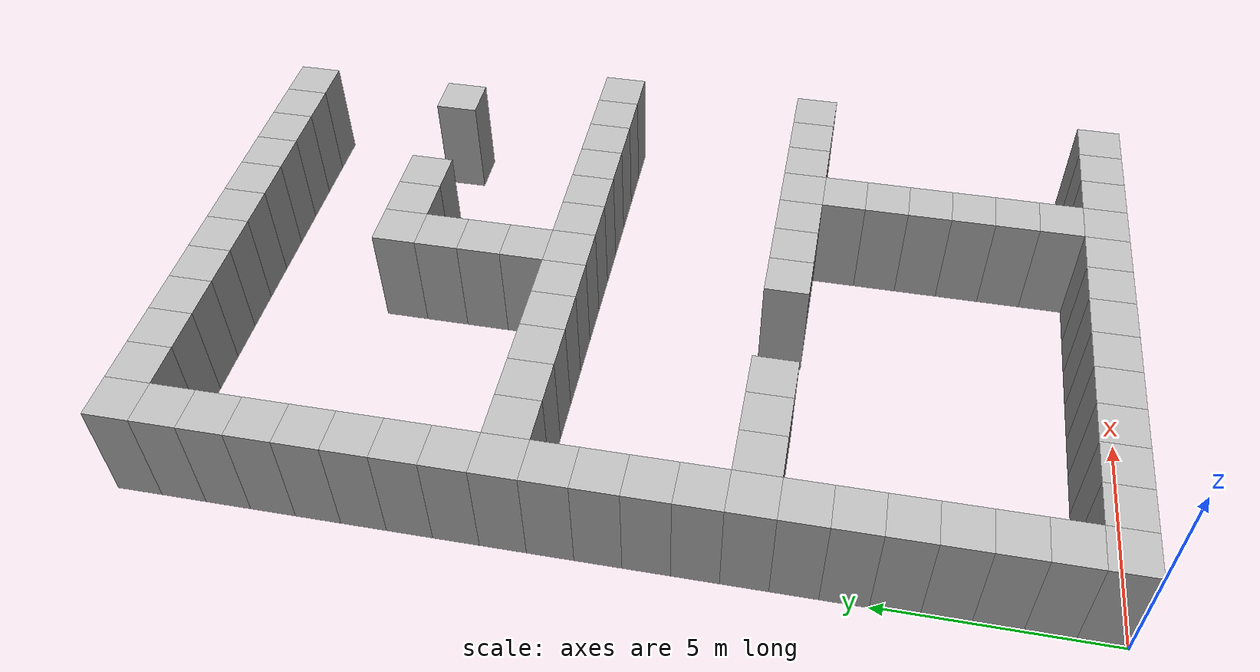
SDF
<sdf version="1.4">
 <world name="default">
  <model name="box_0_0">
   <pose>0.5 0.5 1.25 0 0 0</pose>
   <static>true</static>
   <link name="link">
    <collision name="collision"><geometry><box><size>1.0 1.0 2.5</size></box></geometry></collision>
    <visual name="body_visual">
     <material>
      <script><uri>file://media/materials/scripts/repeated.material</uri><name>Repeated/seamless</name></script>
     </material>
     <geometry><box><size>1.0 1.0 2.5</size></box></geometry>
    </visual>
   </link>
  </model>
  <model name="box_0_1">
   <pose>0.5 1.5 1.25 0 0 0</pose>
   <static>true</static>
   <link name="link">
    <collision name="collision"><geometry><box><size>1.0 1.0 2.5</size></box></geometry></collision>
    <visual name="body_visual">
     <material>
      <script><uri>file://media/materials/scripts/repeated.material</uri><name>Repeated/seamless</name></script>
     </material>
     <geometry><box><size>1.0 1.0 2.5</size></box></geometry>
    </visual>
   </link>
  </model>
  <model name="box_0_2">
   <pose>0.5 2.5 1.25 0 0 0</pose>
   <static>true</static>
   <link name="link">
    <collision name="collision"><geometry><box><size>1.0 1.0 2.5</size></box></geometry></collision>
    <visual name="body_visual">
     <material>
      <script><uri>file://media/materials/scripts/repeated.material</uri><name>Repeated/seamless</name></script>
     </material>
     <geometry><box><size>1.0 1.0 2.5</size></box></geometry>
    </visual>
   </link>
  </model>
  <model name="box_0_3">
   <pose>0.5 3.5 1.25 0 0 0</pose>
   <static>true</static>
   <link name="link">
    <collision name="collision"><geometry><box><size>1.0 1.0 2.5</size></box></geometry></collision>
    <visual name="body_visual">
     <material>
      <script><uri>file://media/materials/scripts/repeated.material</uri><name>Repeated/seamless</name></script>
     </material>
     <geometry><box><size>1.0 1.0 2.5</size></box></geometry>
    </visual>
   </link>
  </model>
  <model name="box_0_4">
   <pose>0.5 4.5 1.25 0 0 0</pose>
   <static>true</static>
   <link name="link">
    <collision name="collision"><geometry><box><size>1.0 1.0 2.5</size></box></geometry></collision>
    <visual name="body_visual">
     <material>
      <script><uri>file://media/materials/scripts/repeated.material</uri><name>Repeated/seamless</name></script>
     </material>
     <geometry><box><size>1.0 1.0 2.5</size></box></geometry>
    </visual>
   </link>
  </model>
  <model name="box_0_5">
   <pose>0.5 5.5 1.25 0 0 0</pose>
   <static>true</static>
   <link name="link">
    <collision name="collision"><geometry><box><size>1.0 1.0 2.5</size></box></geometry></collision>
    <visual name="body_visual">
     <material>
      <script><uri>file://media/materials/scripts/repeated.material</uri><name>Repeated/seamless</name></script>
     </material>
     <geometry><box><size>1.0 1.0 2.5</size></box></geometry>
    </visual>
   </link>
  </model>
  <model name="box_0_6">
   <pose>0.5 6.5 1.25 0 0 0</pose>
   <static>true</static>
   <link name="link">
    <collision name="collision"><geometry><box><size>1.0 1.0 2.5</size></box></geometry></collision>
    <visual name="body_visual">
     <material>
      <script><uri>file://media/materials/scripts/repeated.material</uri><name>Repeated/seamless</name></script>
     </material>
     <geometry><box><size>1.0 1.0 2.5</size></box></geometry>
    </visual>
   </link>
  </model>
  <model name="box_0_7">
   <pose>0.5 7.5 1.25 0 0 0</pose>
   <static>true</static>
   <link name="link">
    <collision name="collision"><geometry><box><size>1.0 1.0 2.5</size></box></geometry></collision>
    <visual name="body_visual">
     <material>
      <script><uri>file://media/materials/scripts/repeated.material</uri><name>Repeated/seamless</name></script>
     </material>
     <geometry><box><size>1.0 1.0 2.5</size></box></geometry>
    </visual>
   </link>
  </model>
  <model name="box_0_8">
   <pose>0.5 8.5 1.25 0 0 0</pose>
   <static>true</static>
   <link name="link">
    <collision name="collision"><geometry><box><size>1.0 1.0 2.5</size></box></geometry></collision>
    <visual name="body_visual">
     <material>
      <script><uri>file://media/materials/scripts/repeated.material</uri><name>Repeated/seamless</name></script>
     </material>
     <geometry><box><size>1.0 1.0 2.5</size></box></geometry>
    </visual>
   </link>
  </model>
  <model name="box_0_9">
   <pose>0.5 9.5 1.25 0 0 0</pose>
   <static>true</static>
   <link name="link">
    <collision name="collision"><geometry><box><size>1.0 1.0 2.5</size></box></geometry></collision>
    <visual name="body_visual">
     <material>
      <script><uri>file://media/materials/scripts/repeated.material</uri><name>Repeated/seamless</name></script>
     </material>
     <geometry><box><size>1.0 1.0 2.5</size></box></geometry>
    </visual>
   </link>
  </model>
  <model name="box_0_10">
   <pose>0.5 10.5 1.25 0 0 0</pose>
   <static>true</static>
   <link name="link">
    <collision name="collision"><geometry><box><size>1.0 1.0 2.5</size></box></geometry></collision>
    <visual name="body_visual">
     <material>
      <script><uri>file://media/materials/scripts/repeated.material</uri><name>Repeated/seamless</name></script>
     </material>
     <geometry><box><size>1.0 1.0 2.5</size></box></geometry>
    </visual>
   </link>
  </model>
  <model name="box_0_11">
   <pose>0.5 11.5 1.25 0 0 0</pose>
   <static>true</static>
   <link name="link">
    <collision name="collision"><geometry><box><size>1.0 1.0 2.5</size></box></geometry></collision>
    <visual name="body_visual">
     <material>
      <script><uri>file://media/materials/scripts/repeated.material</uri><name>Repeated/seamless</name></script>
     </material>
     <geometry><box><size>1.0 1.0 2.5</size></box></geometry>
    </visual>
   </link>
  </model>
  <model name="box_0_12">
   <pose>0.5 12.5 1.25 0 0 0</pose>
   <static>true</static>
   <link name="link">
    <collision name="collision"><geometry><box><size>1.0 1.0 2.5</size></box></geometry></collision>
    <visual name="body_visual">
     <material>
      <script><uri>file://media/materials/scripts/repeated.material</uri><name>Repeated/seamless</name></script>
     </material>
     <geometry><box><size>1.0 1.0 2.5</size></box></geometry>
    </visual>
   </link>
  </model>
  <model name="box_0_13">
   <pose>0.5 13.5 1.25 0 0 0</pose>
   <static>true</static>
   <link name="link">
    <collision name="collision"><geometry><box><size>1.0 1.0 2.5</size></box></geometry></collision>
    <visual name="body_visual">
     <material>
      <script><uri>file://media/materials/scripts/repeated.material</uri><name>Repeated/seamless</name></script>
     </material>
     <geometry><box><size>1.0 1.0 2.5</size></box></geometry>
    </visual>
   </link>
  </model>
  <model name="box_0_14">
   <pose>0.5 14.5 1.25 0 0 0</pose>
   <static>true</static>
   <link name="link">
    <collision name="collision"><geometry><box><size>1.0 1.0 2.5</size></box></geometry></collision>
    <visual name="body_visual">
     <material>
      <script><uri>file://media/materials/scripts/repeated.material</uri><name>Repeated/seamless</name></script>
     </material>
     <geometry><box><size>1.0 1.0 2.5</size></box></geometry>
    </visual>
   </link>
  </model>
  <model name="box_0_15">
   <pose>0.5 15.5 1.25 0 0 0</pose>
   <static>true</static>
   <link name="link">
    <collision name="collision"><geometry><box><size>1.0 1.0 2.5</size></box></geometry></collision>
    <visual name="body_visual">
     <material>
      <script><uri>file://media/materials/scripts/repeated.material</uri><name>Repeated/seamless</name></script>
     </material>
     <geometry><box><size>1.0 1.0 2.5</size></box></geometry>
    </visual>
   </link>
  </model>
  <model name="box_0_16">
   <pose>0.5 16.5 1.25 0 0 0</pose>
   <static>true</static>
   <link name="link">
    <collision name="collision"><geometry><box><size>1.0 1.0 2.5</size></box></geometry></collision>
    <visual name="body_visual">
     <material>
      <script><uri>file://media/materials/scripts/repeated.material</uri><name>Repeated/seamless</name></script>
     </material>
     <geometry><box><size>1.0 1.0 2.5</size></box></geometry>
    </visual>
   </link>
  </model>
  <model name="box_0_17">
   <pose>0.5 17.5 1.25 0 0 0</pose>
   <static>true</static>
   <link name="link">
    <collision name="collision"><geometry><box><size>1.0 1.0 2.5</size></box></geometry></collision>
    <visual name="body_visual">
     <material>
      <script><uri>file://media/materials/scripts/repeated.material</uri><name>Repeated/seamless</name></script>
     </material>
     <geometry><box><size>1.0 1.0 2.5</size></box></geometry>
    </visual>
   </link>
  </model>
  <model name="box_0_18">
   <pose>0.5 18.5 1.25 0 0 0</pose>
   <static>true</static>
   <link name="link">
    <collision name="collision"><geometry><box><size>1.0 1.0 2.5</size></box></geometry></collision>
    <visual name="body_visual">
     <material>
      <script><uri>file://media/materials/scripts/repeated.material</uri><name>Repeated/seamless</name></script>
     </material>
     <geometry><box><size>1.0 1.0 2.5</size></box></geometry>
    </visual>
   </link>
  </model>
  <model name="box_0_19">
   <pose>0.5 19.5 1.25 0 0 0</pose>
   <static>true</static>
   <link name="link">
    <collision name="collision"><geometry><box><size>1.0 1.0 2.5</size></box></geometry></collision>
    <visual name="body_visual">
     <material>
      <script><uri>file://media/materials/scripts/repeated.material</uri><name>Repeated/seamless</name></script>
     </material>
     <geometry><box><size>1.0 1.0 2.5</size></box></geometry>
    </visual>
   </link>
  </model>
  <model name="box_0_20">
   <pose>0.5 20.5 1.25 0 0 0</pose>
   <static>true</static>
   <link name="link">
    <collision name="collision"><geometry><box><size>1.0 1.0 2.5</size></box></geometry></collision>
    <visual name="body_visual">
     <material>
      <script><uri>file://media/materials/scripts/repeated.material</uri><name>Repeated/seamless</name></script>
     </material>
     <geometry><box><size>1.0 1.0 2.5</size></box></geometry>
    </visual>
   </link>
  </model>
  <model name="box_1_0">
   <pose>1.5 0.5 1.25 0 0 0</pose>
   <static>true</static>
   <link name="link">
    <collision name="collision"><geometry><box><size>1.0 1.0 2.5</size></box></geometry></collision>
    <visual name="body_visual">
     <material>
      <script><uri>file://media/materials/scripts/repeated.material</uri><name>Repeated/seamless</name></script>
     </material>
     <geometry><box><size>1.0 1.0 2.5</size></box></geometry>
    </visual>
   </link>
  </model>
  <model name="box_1_7">
   <pose>1.5 7.5 1.25 0 0 0</pose>
   <static>true</static>
   <link name="link">
    <collision name="collision"><geometry><box><size>1.0 1.0 2.5</size></box></geometry></collision>
    <visual name="body_visual">
     <material>
      <script><uri>file://media/materials/scripts/repeated.material</uri><name>Repeated/seamless</name></script>
     </material>
     <geometry><box><size>1.0 1.0 2.5</size></box></geometry>
    </visual>
   </link>
  </model>
  <model name="box_1_12">
   <pose>1.5 12.5 1.25 0 0 0</pose>
   <static>true</static>
   <link name="link">
    <collision name="collision"><geometry><box><size>1.0 1.0 2.5</size></box></geometry></collision>
    <visual name="body_visual">
     <material>
      <script><uri>file://media/materials/scripts/repeated.material</uri><name>Repeated/seamless</name></script>
     </material>
     <geometry><box><size>1.0 1.0 2.5</size></box></geometry>
    </visual>
   </link>
  </model>
  <model name="box_1_20">
   <pose>1.5 20.5 1.25 0 0 0</pose>
   <static>true</static>
   <link name="link">
    <collision name="collision"><geometry><box><size>1.0 1.0 2.5</size></box></geometry></collision>
    <visual name="body_visual">
     <material>
      <script><uri>file://media/materials/scripts/repeated.material</uri><name>Repeated/seamless</name></script>
     </material>
     <geometry><box><size>1.0 1.0 2.5</size></box></geometry>
    </visual>
   </link>
  </model>
  <model name="box_2_0">
   <pose>2.5 0.5 1.25 0 0 0</pose>
   <static>true</static>
   <link name="link">
    <collision name="collision"><geometry><box><size>1.0 1.0 2.5</size></box></geometry></collision>
    <visual name="body_visual">
     <material>
      <script><uri>file://media/materials/scripts/repeated.material</uri><name>Repeated/seamless</name></script>
     </material>
     <geometry><box><size>1.0 1.0 2.5</size></box></geometry>
    </visual>
   </link>
  </model>
  <model name="box_2_7">
   <pose>2.5 7.5 1.25 0 0 0</pose>
   <static>true</static>
   <link name="link">
    <collision name="collision"><geometry><box><size>1.0 1.0 2.5</size></box></geometry></collision>
    <visual name="body_visual">
     <material>
      <script><uri>file://media/materials/scripts/repeated.material</uri><name>Repeated/seamless</name></script>
     </material>
     <geometry><box><size>1.0 1.0 2.5</size></box></geometry>
    </visual>
   </link>
  </model>
  <model name="box_2_12">
   <pose>2.5 12.5 1.25 0 0 0</pose>
   <static>true</static>
   <link name="link">
    <collision name="collision"><geometry><box><size>1.0 1.0 2.5</size></box></geometry></collision>
    <visual name="body_visual">
     <material>
      <script><uri>file://media/materials/scripts/repeated.material</uri><name>Repeated/seamless</name></script>
     </material>
     <geometry><box><size>1.0 1.0 2.5</size></box></geometry>
    </visual>
   </link>
  </model>
  <model name="box_2_20">
   <pose>2.5 20.5 1.25 0 0 0</pose>
   <static>true</static>
   <link name="link">
    <collision name="collision"><geometry><box><size>1.0 1.0 2.5</size></box></geometry></collision>
    <visual name="body_visual">
     <material>
      <script><uri>file://media/materials/scripts/repeated.material</uri><name>Repeated/seamless</name></script>
     </material>
     <geometry><box><size>1.0 1.0 2.5</size></box></geometry>
    </visual>
   </link>
  </model>
  <model name="box_3_0">
   <pose>3.5 0.5 1.25 0 0 0</pose>
   <static>true</static>
   <link name="link">
    <collision name="collision"><geometry><box><size>1.0 1.0 2.5</size></box></geometry></collision>
    <visual name="body_visual">
     <material>
      <script><uri>file://media/materials/scripts/repeated.material</uri><name>Repeated/seamless</name></script>
     </material>
     <geometry><box><size>1.0 1.0 2.5</size></box></geometry>
    </visual>
   </link>
  </model>
  <model name="box_3_7">
   <pose>3.5 7.5 1.25 0 0 0</pose>
   <static>true</static>
   <link name="link">
    <collision name="collision"><geometry><box><size>1.0 1.0 2.5</size></box></geometry></collision>
    <visual name="body_visual">
     <material>
      <script><uri>file://media/materials/scripts/repeated.material</uri><name>Repeated/seamless</name></script>
     </material>
     <geometry><box><size>1.0 1.0 2.5</size></box></geometry>
    </visual>
   </link>
  </model>
  <model name="box_3_12">
   <pose>3.5 12.5 1.25 0 0 0</pose>
   <static>true</static>
   <link name="link">
    <collision name="collision"><geometry><box><size>1.0 1.0 2.5</size></box></geometry></collision>
    <visual name="body_visual">
     <material>
      <script><uri>file://media/materials/scripts/repeated.material</uri><name>Repeated/seamless</name></script>
     </material>
     <geometry><box><size>1.0 1.0 2.5</size></box></geometry>
    </visual>
   </link>
  </model>
  <model name="box_3_20">
   <pose>3.5 20.5 1.25 0 0 0</pose>
   <static>true</static>
   <link name="link">
    <collision name="collision"><geometry><box><size>1.0 1.0 2.5</size></box></geometry></collision>
    <visual name="body_visual">
     <material>
      <script><uri>file://media/materials/scripts/repeated.material</uri><name>Repeated/seamless</name></script>
     </material>
     <geometry><box><size>1.0 1.0 2.5</size></box></geometry>
    </visual>
   </link>
  </model>
  <model name="box_4_0">
   <pose>4.5 0.5 1.25 0 0 0</pose>
   <static>true</static>
   <link name="link">
    <collision name="collision"><geometry><box><size>1.0 1.0 2.5</size></box></geometry></collision>
    <visual name="body_visual">
     <material>
      <script><uri>file://media/materials/scripts/repeated.material</uri><name>Repeated/seamless</name></script>
     </material>
     <geometry><box><size>1.0 1.0 2.5</size></box></geometry>
    </visual>
   </link>
  </model>
  <model name="box_4_12">
   <pose>4.5 12.5 1.25 0 0 0</pose>
   <static>true</static>
   <link name="link">
    <collision name="collision"><geometry><box><size>1.0 1.0 2.5</size></box></geometry></collision>
    <visual name="body_visual">
     <material>
      <script><uri>file://media/materials/scripts/repeated.material</uri><name>Repeated/seamless</name></script>
     </material>
     <geometry><box><size>1.0 1.0 2.5</size></box></geometry>
    </visual>
   </link>
  </model>
  <model name="box_4_20">
   <pose>4.5 20.5 1.25 0 0 0</pose>
   <static>true</static>
   <link name="link">
    <collision name="collision"><geometry><box><size>1.0 1.0 2.5</size></box></geometry></collision>
    <visual name="body_visual">
     <material>
      <script><uri>file://media/materials/scripts/repeated.material</uri><name>Repeated/seamless</name></script>
     </material>
     <geometry><box><size>1.0 1.0 2.5</size></box></geometry>
    </visual>
   </link>
  </model>
  <model name="box_5_0">
   <pose>5.5 0.5 1.25 0 0 0</pose>
   <static>true</static>
   <link name="link">
    <collision name="collision"><geometry><box><size>1.0 1.0 2.5</size></box></geometry></collision>
    <visual name="body_visual">
     <material>
      <script><uri>file://media/materials/scripts/repeated.material</uri><name>Repeated/seamless</name></script>
     </material>
     <geometry><box><size>1.0 1.0 2.5</size></box></geometry>
    </visual>
   </link>
  </model>
  <model name="box_5_12">
   <pose>5.5 12.5 1.25 0 0 0</pose>
   <static>true</static>
   <link name="link">
    <collision name="collision"><geometry><box><size>1.0 1.0 2.5</size></box></geometry></collision>
    <visual name="body_visual">
     <material>
      <script><uri>file://media/materials/scripts/repeated.material</uri><name>Repeated/seamless</name></script>
     </material>
     <geometry><box><size>1.0 1.0 2.5</size></box></geometry>
    </visual>
   </link>
  </model>
  <model name="box_5_20">
   <pose>5.5 20.5 1.25 0 0 0</pose>
   <static>true</static>
   <link name="link">
    <collision name="collision"><geometry><box><size>1.0 1.0 2.5</size></box></geometry></collision>
    <visual name="body_visual">
     <material>
      <script><uri>file://media/materials/scripts/repeated.material</uri><name>Repeated/seamless</name></script>
     </material>
     <geometry><box><size>1.0 1.0 2.5</size></box></geometry>
    </visual>
   </link>
  </model>
  <model name="box_6_0">
   <pose>6.5 0.5 1.25 0 0 0</pose>
   <static>true</static>
   <link name="link">
    <collision name="collision"><geometry><box><size>1.0 1.0 2.5</size></box></geometry></collision>
    <visual name="body_visual">
     <material>
      <script><uri>file://media/materials/scripts/repeated.material</uri><name>Repeated/seamless</name></script>
     </material>
     <geometry><box><size>1.0 1.0 2.5</size></box></geometry>
    </visual>
   </link>
  </model>
  <model name="box_6_7">
   <pose>6.5 7.5 1.25 0 0 0</pose>
   <static>true</static>
   <link name="link">
    <collision name="collision"><geometry><box><size>1.0 1.0 2.5</size></box></geometry></collision>
    <visual name="body_visual">
     <material>
      <script><uri>file://media/materials/scripts/repeated.material</uri><name>Repeated/seamless</name></script>
     </material>
     <geometry><box><size>1.0 1.0 2.5</size></box></geometry>
    </visual>
   </link>
  </model>
  <model name="box_6_12">
   <pose>6.5 12.5 1.25 0 0 0</pose>
   <static>true</static>
   <link name="link">
    <collision name="collision"><geometry><box><size>1.0 1.0 2.5</size></box></geometry></collision>
    <visual name="body_visual">
     <material>
      <script><uri>file://media/materials/scripts/repeated.material</uri><name>Repeated/seamless</name></script>
     </material>
     <geometry><box><size>1.0 1.0 2.5</size></box></geometry>
    </visual>
   </link>
  </model>
  <model name="box_6_13">
   <pose>6.5 13.5 1.25 0 0 0</pose>
   <static>true</static>
   <link name="link">
    <collision name="collision"><geometry><box><size>1.0 1.0 2.5</size></box></geometry></collision>
    <visual name="body_visual">
     <material>
      <script><uri>file://media/materials/scripts/repeated.material</uri><name>Repeated/seamless</name></script>
     </material>
     <geometry><box><size>1.0 1.0 2.5</size></box></geometry>
    </visual>
   </link>
  </model>
  <model name="box_6_14">
   <pose>6.5 14.5 1.25 0 0 0</pose>
   <static>true</static>
   <link name="link">
    <collision name="collision"><geometry><box><size>1.0 1.0 2.5</size></box></geometry></collision>
    <visual name="body_visual">
     <material>
      <script><uri>file://media/materials/scripts/repeated.material</uri><name>Repeated/seamless</name></script>
     </material>
     <geometry><box><size>1.0 1.0 2.5</size></box></geometry>
    </visual>
   </link>
  </model>
  <model name="box_6_15">
   <pose>6.5 15.5 1.25 0 0 0</pose>
   <static>true</static>
   <link name="link">
    <collision name="collision"><geometry><box><size>1.0 1.0 2.5</size></box></geometry></collision>
    <visual name="body_visual">
     <material>
      <script><uri>file://media/materials/scripts/repeated.material</uri><name>Repeated/seamless</name></script>
     </material>
     <geometry><box><size>1.0 1.0 2.5</size></box></geometry>
    </visual>
   </link>
  </model>
  <model name="box_6_16">
   <pose>6.5 16.5 1.25 0 0 0</pose>
   <static>true</static>
   <link name="link">
    <collision name="collision"><geometry><box><size>1.0 1.0 2.5</size></box></geometry></collision>
    <visual name="body_visual">
     <material>
      <script><uri>file://media/materials/scripts/repeated.material</uri><name>Repeated/seamless</name></script>
     </material>
     <geometry><box><size>1.0 1.0 2.5</size></box></geometry>
    </visual>
   </link>
  </model>
  <model name="box_6_20">
   <pose>6.5 20.5 1.25 0 0 0</pose>
   <static>true</static>
   <link name="link">
    <collision name="collision"><geometry><box><size>1.0 1.0 2.5</size></box></geometry></collision>
    <visual name="body_visual">
     <material>
      <script><uri>file://media/materials/scripts/repeated.material</uri><name>Repeated/seamless</name></script>
     </material>
     <geometry><box><size>1.0 1.0 2.5</size></box></geometry>
    </visual>
   </link>
  </model>
  <model name="box_7_0">
   <pose>7.5 0.5 1.25 0 0 0</pose>
   <static>true</static>
   <link name="link">
    <collision name="collision"><geometry><box><size>1.0 1.0 2.5</size></box></geometry></collision>
    <visual name="body_visual">
     <material>
      <script><uri>file://media/materials/scripts/repeated.material</uri><name>Repeated/seamless</name></script>
     </material>
     <geometry><box><size>1.0 1.0 2.5</size></box></geometry>
    </visual>
   </link>
  </model>
  <model name="box_7_7">
   <pose>7.5 7.5 1.25 0 0 0</pose>
   <static>true</static>
   <link name="link">
    <collision name="collision"><geometry><box><size>1.0 1.0 2.5</size></box></geometry></collision>
    <visual name="body_visual">
     <material>
      <script><uri>file://media/materials/scripts/repeated.material</uri><name>Repeated/seamless</name></script>
     </material>
     <geometry><box><size>1.0 1.0 2.5</size></box></geometry>
    </visual>
   </link>
  </model>
  <model name="box_7_12">
   <pose>7.5 12.5 1.25 0 0 0</pose>
   <static>true</static>
   <link name="link">
    <collision name="collision"><geometry><box><size>1.0 1.0 2.5</size></box></geometry></collision>
    <visual name="body_visual">
     <material>
      <script><uri>file://media/materials/scripts/repeated.material</uri><name>Repeated/seamless</name></script>
     </material>
     <geometry><box><size>1.0 1.0 2.5</size></box></geometry>
    </visual>
   </link>
  </model>
  <model name="box_7_16">
   <pose>7.5 16.5 1.25 0 0 0</pose>
   <static>true</static>
   <link name="link">
    <collision name="collision"><geometry><box><size>1.0 1.0 2.5</size></box></geometry></collision>
    <visual name="body_visual">
     <material>
      <script><uri>file://media/materials/scripts/repeated.material</uri><name>Repeated/seamless</name></script>
     </material>
     <geometry><box><size>1.0 1.0 2.5</size></box></geometry>
    </visual>
   </link>
  </model>
  <model name="box_7_20">
   <pose>7.5 20.5 1.25 0 0 0</pose>
   <static>true</static>
   <link name="link">
    <collision name="collision"><geometry><box><size>1.0 1.0 2.5</size></box></geometry></collision>
    <visual name="body_visual">
     <material>
      <script><uri>file://media/materials/scripts/repeated.material</uri><name>Repeated/seamless</name></script>
     </material>
     <geometry><box><size>1.0 1.0 2.5</size></box></geometry>
    </visual>
   </link>
  </model>
  <model name="box_8_0">
   <pose>8.5 0.5 1.25 0 0 0</pose>
   <static>true</static>
   <link name="link">
    <collision name="collision"><geometry><box><size>1.0 1.0 2.5</size></box></geometry></collision>
    <visual name="body_visual">
     <material>
      <script><uri>file://media/materials/scripts/repeated.material</uri><name>Repeated/seamless</name></script>
     </material>
     <geometry><box><size>1.0 1.0 2.5</size></box></geometry>
    </visual>
   </link>
  </model>
  <model name="box_8_7">
   <pose>8.5 7.5 1.25 0 0 0</pose>
   <static>true</static>
   <link name="link">
    <collision name="collision"><geometry><box><size>1.0 1.0 2.5</size></box></geometry></collision>
    <visual name="body_visual">
     <material>
      <script><uri>file://media/materials/scripts/repeated.material</uri><name>Repeated/seamless</name></script>
     </material>
     <geometry><box><size>1.0 1.0 2.5</size></box></geometry>
    </visual>
   </link>
  </model>
  <model name="box_8_12">
   <pose>8.5 12.5 1.25 0 0 0</pose>
   <static>true</static>
   <link name="link">
    <collision name="collision"><geometry><box><size>1.0 1.0 2.5</size></box></geometry></collision>
    <visual name="body_visual">
     <material>
      <script><uri>file://media/materials/scripts/repeated.material</uri><name>Repeated/seamless</name></script>
     </material>
     <geometry><box><size>1.0 1.0 2.5</size></box></geometry>
    </visual>
   </link>
  </model>
  <model name="box_8_16">
   <pose>8.5 16.5 1.25 0 0 0</pose>
   <static>true</static>
   <link name="link">
    <collision name="collision"><geometry><box><size>1.0 1.0 2.5</size></box></geometry></collision>
    <visual name="body_visual">
     <material>
      <script><uri>file://media/materials/scripts/repeated.material</uri><name>Repeated/seamless</name></script>
     </material>
     <geometry><box><size>1.0 1.0 2.5</size></box></geometry>
    </visual>
   </link>
  </model>
  <model name="box_8_20">
   <pose>8.5 20.5 1.25 0 0 0</pose>
   <static>true</static>
   <link name="link">
    <collision name="collision"><geometry><box><size>1.0 1.0 2.5</size></box></geometry></collision>
    <visual name="body_visual">
     <material>
      <script><uri>file://media/materials/scripts/repeated.material</uri><name>Repeated/seamless</name></script>
     </material>
     <geometry><box><size>1.0 1.0 2.5</size></box></geometry>
    </visual>
   </link>
  </model>
  <model name="box_9_0">
   <pose>9.5 0.5 1.25 0 0 0</pose>
   <static>true</static>
   <link name="link">
    <collision name="collision"><geometry><box><size>1.0 1.0 2.5</size></box></geometry></collision>
    <visual name="body_visual">
     <material>
      <script><uri>file://media/materials/scripts/repeated.material</uri><name>Repeated/seamless</name></script>
     </material>
     <geometry><box><size>1.0 1.0 2.5</size></box></geometry>
    </visual>
   </link>
  </model>
  <model name="box_9_1">
   <pose>9.5 1.5 1.25 0 0 0</pose>
   <static>true</static>
   <link name="link">
    <collision name="collision"><geometry><box><size>1.0 1.0 2.5</size></box></geometry></collision>
    <visual name="body_visual">
     <material>
      <script><uri>file://media/materials/scripts/repeated.material</uri><name>Repeated/seamless</name></script>
     </material>
     <geometry><box><size>1.0 1.0 2.5</size></box></geometry>
    </visual>
   </link>
  </model>
  <model name="box_9_2">
   <pose>9.5 2.5 1.25 0 0 0</pose>
   <static>true</static>
   <link name="link">
    <collision name="collision"><geometry><box><size>1.0 1.0 2.5</size></box></geometry></collision>
    <visual name="body_visual">
     <material>
      <script><uri>file://media/materials/scripts/repeated.material</uri><name>Repeated/seamless</name></script>
     </material>
     <geometry><box><size>1.0 1.0 2.5</size></box></geometry>
    </visual>
   </link>
  </model>
  <model name="box_9_3">
   <pose>9.5 3.5 1.25 0 0 0</pose>
   <static>true</static>
   <link name="link">
    <collision name="collision"><geometry><box><size>1.0 1.0 2.5</size></box></geometry></collision>
    <visual name="body_visual">
     <material>
      <script><uri>file://media/materials/scripts/repeated.material</uri><name>Repeated/seamless</name></script>
     </material>
     <geometry><box><size>1.0 1.0 2.5</size></box></geometry>
    </visual>
   </link>
  </model>
  <model name="box_9_4">
   <pose>9.5 4.5 1.25 0 0 0</pose>
   <static>true</static>
   <link name="link">
    <collision name="collision"><geometry><box><size>1.0 1.0 2.5</size></box></geometry></collision>
    <visual name="body_visual">
     <material>
      <script><uri>file://media/materials/scripts/repeated.material</uri><name>Repeated/seamless</name></script>
     </material>
     <geometry><box><size>1.0 1.0 2.5</size></box></geometry>
    </visual>
   </link>
  </model>
  <model name="box_9_5">
   <pose>9.5 5.5 1.25 0 0 0</pose>
   <static>true</static>
   <link name="link">
    <collision name="collision"><geometry><box><size>1.0 1.0 2.5</size></box></geometry></collision>
    <visual name="body_visual">
     <material>
      <script><uri>file://media/materials/scripts/repeated.material</uri><name>Repeated/seamless</name></script>
     </material>
     <geometry><box><size>1.0 1.0 2.5</size></box></geometry>
    </visual>
   </link>
  </model>
  <model name="box_9_6">
   <pose>9.5 6.5 1.25 0 0 0</pose>
   <static>true</static>
   <link name="link">
    <collision name="collision"><geometry><box><size>1.0 1.0 2.5</size></box></geometry></collision>
    <visual name="body_visual">
     <material>
      <script><uri>file://media/materials/scripts/repeated.material</uri><name>Repeated/seamless</name></script>
     </material>
     <geometry><box><size>1.0 1.0 2.5</size></box></geometry>
    </visual>
   </link>
  </model>
  <model name="box_9_7">
   <pose>9.5 7.5 1.25 0 0 0</pose>
   <static>true</static>
   <link name="link">
    <collision name="collision"><geometry><box><size>1.0 1.0 2.5</size></box></geometry></collision>
    <visual name="body_visual">
     <material>
      <script><uri>file://media/materials/scripts/repeated.material</uri><name>Repeated/seamless</name></script>
     </material>
     <geometry><box><size>1.0 1.0 2.5</size></box></geometry>
    </visual>
   </link>
  </model>
  <model name="box_9_12">
   <pose>9.5 12.5 1.25 0 0 0</pose>
   <static>true</static>
   <link name="link">
    <collision name="collision"><geometry><box><size>1.0 1.0 2.5</size></box></geometry></collision>
    <visual name="body_visual">
     <material>
      <script><uri>file://media/materials/scripts/repeated.material</uri><name>Repeated/seamless</name></script>
     </material>
     <geometry><box><size>1.0 1.0 2.5</size></box></geometry>
    </visual>
   </link>
  </model>
  <model name="box_9_20">
   <pose>9.5 20.5 1.25 0 0 0</pose>
   <static>true</static>
   <link name="link">
    <collision name="collision"><geometry><box><size>1.0 1.0 2.5</size></box></geometry></collision>
    <visual name="body_visual">
     <material>
      <script><uri>file://media/materials/scripts/repeated.material</uri><name>Repeated/seamless</name></script>
     </material>
     <geometry><box><size>1.0 1.0 2.5</size></box></geometry>
    </visual>
   </link>
  </model>
  <model name="box_10_0">
   <pose>10.5 0.5 1.25 0 0 0</pose>
   <static>true</static>
   <link name="link">
    <collision name="collision"><geometry><box><size>1.0 1.0 2.5</size></box></geometry></collision>
    <visual name="body_visual">
     <material>
      <script><uri>file://media/materials/scripts/repeated.material</uri><name>Repeated/seamless</name></script>
     </material>
     <geometry><box><size>1.0 1.0 2.5</size></box></geometry>
    </visual>
   </link>
  </model>
  <model name="box_10_7">
   <pose>10.5 7.5 1.25 0 0 0</pose>
   <static>true</static>
   <link name="link">
    <collision name="collision"><geometry><box><size>1.0 1.0 2.5</size></box></geometry></collision>
    <visual name="body_visual">
     <material>
      <script><uri>file://media/materials/scripts/repeated.material</uri><name>Repeated/seamless</name></script>
     </material>
     <geometry><box><size>1.0 1.0 2.5</size></box></geometry>
    </visual>
   </link>
  </model>
  <model name="box_10_12">
   <pose>10.5 12.5 1.25 0 0 0</pose>
   <static>true</static>
   <link name="link">
    <collision name="collision"><geometry><box><size>1.0 1.0 2.5</size></box></geometry></collision>
    <visual name="body_visual">
     <material>
      <script><uri>file://media/materials/scripts/repeated.material</uri><name>Repeated/seamless</name></script>
     </material>
     <geometry><box><size>1.0 1.0 2.5</size></box></geometry>
    </visual>
   </link>
  </model>
  <model name="box_10_20">
   <pose>10.5 20.5 1.25 0 0 0</pose>
   <static>true</static>
   <link name="link">
    <collision name="collision"><geometry><box><size>1.0 1.0 2.5</size></box></geometry></collision>
    <visual name="body_visual">
     <material>
      <script><uri>file://media/materials/scripts/repeated.material</uri><name>Repeated/seamless</name></script>
     </material>
     <geometry><box><size>1.0 1.0 2.5</size></box></geometry>
    </visual>
   </link>
  </model>
  <model name="box_11_0">
   <pose>11.5 0.5 1.25 0 0 0</pose>
   <static>true</static>
   <link name="link">
    <collision name="collision"><geometry><box><size>1.0 1.0 2.5</size></box></geometry></collision>
    <visual name="body_visual">
     <material>
      <script><uri>file://media/materials/scripts/repeated.material</uri><name>Repeated/seamless</name></script>
     </material>
     <geometry><box><size>1.0 1.0 2.5</size></box></geometry>
    </visual>
   </link>
  </model>
  <model name="box_11_7">
   <pose>11.5 7.5 1.25 0 0 0</pose>
   <static>true</static>
   <link name="link">
    <collision name="collision"><geometry><box><size>1.0 1.0 2.5</size></box></geometry></collision>
    <visual name="body_visual">
     <material>
      <script><uri>file://media/materials/scripts/repeated.material</uri><name>Repeated/seamless</name></script>
     </material>
     <geometry><box><size>1.0 1.0 2.5</size></box></geometry>
    </visual>
   </link>
  </model>
  <model name="box_11_12">
   <pose>11.5 12.5 1.25 0 0 0</pose>
   <static>true</static>
   <link name="link">
    <collision name="collision"><geometry><box><size>1.0 1.0 2.5</size></box></geometry></collision>
    <visual name="body_visual">
     <material>
      <script><uri>file://media/materials/scripts/repeated.material</uri><name>Repeated/seamless</name></script>
     </material>
     <geometry><box><size>1.0 1.0 2.5</size></box></geometry>
    </visual>
   </link>
  </model>
  <model name="box_11_16">
   <pose>11.5 16.5 1.25 0 0 0</pose>
   <static>true</static>
   <link name="link">
    <collision name="collision"><geometry><box><size>1.0 1.0 2.5</size></box></geometry></collision>
    <visual name="body_visual">
     <material>
      <script><uri>file://media/materials/scripts/repeated.material</uri><name>Repeated/seamless</name></script>
     </material>
     <geometry><box><size>1.0 1.0 2.5</size></box></geometry>
    </visual>
   </link>
  </model>
  <model name="box_11_20">
   <pose>11.5 20.5 1.25 0 0 0</pose>
   <static>true</static>
   <link name="link">
    <collision name="collision"><geometry><box><size>1.0 1.0 2.5</size></box></geometry></collision>
    <visual name="body_visual">
     <material>
      <script><uri>file://media/materials/scripts/repeated.material</uri><name>Repeated/seamless</name></script>
     </material>
     <geometry><box><size>1.0 1.0 2.5</size></box></geometry>
    </visual>
   </link>
  </model>
  <model name="box_12_0">
   <pose>12.5 0.5 1.25 0 0 0</pose>
   <static>true</static>
   <link name="link">
    <collision name="collision"><geometry><box><size>1.0 1.0 2.5</size></box></geometry></collision>
    <visual name="body_visual">
     <material>
      <script><uri>file://media/materials/scripts/repeated.material</uri><name>Repeated/seamless</name></script>
     </material>
     <geometry><box><size>1.0 1.0 2.5</size></box></geometry>
    </visual>
   </link>
  </model>
  <model name="box_12_7">
   <pose>12.5 7.5 1.25 0 0 0</pose>
   <static>true</static>
   <link name="link">
    <collision name="collision"><geometry><box><size>1.0 1.0 2.5</size></box></geometry></collision>
    <visual name="body_visual">
     <material>
      <script><uri>file://media/materials/scripts/repeated.material</uri><name>Repeated/seamless</name></script>
     </material>
     <geometry><box><size>1.0 1.0 2.5</size></box></geometry>
    </visual>
   </link>
  </model>
  <model name="box_12_12">
   <pose>12.5 12.5 1.25 0 0 0</pose>
   <static>true</static>
   <link name="link">
    <collision name="collision"><geometry><box><size>1.0 1.0 2.5</size></box></geometry></collision>
    <visual name="body_visual">
     <material>
      <script><uri>file://media/materials/scripts/repeated.material</uri><name>Repeated/seamless</name></script>
     </material>
     <geometry><box><size>1.0 1.0 2.5</size></box></geometry>
    </visual>
   </link>
  </model>
 </world>
</sdf>
